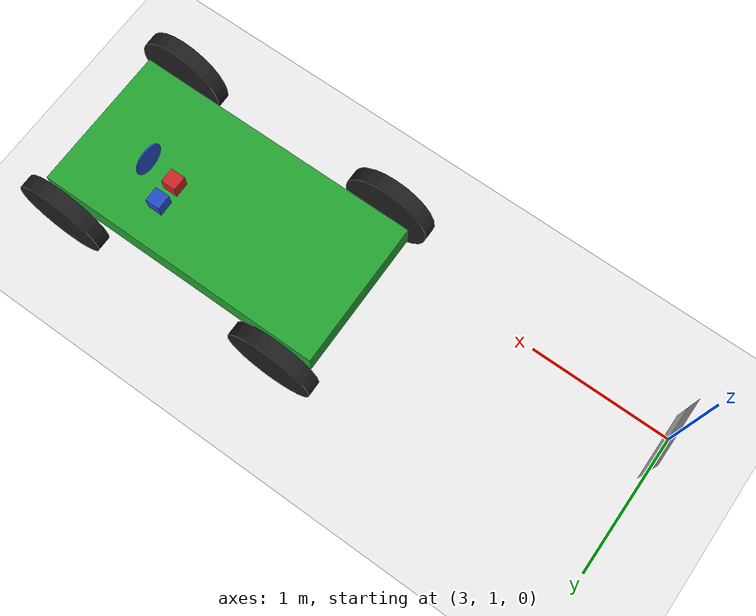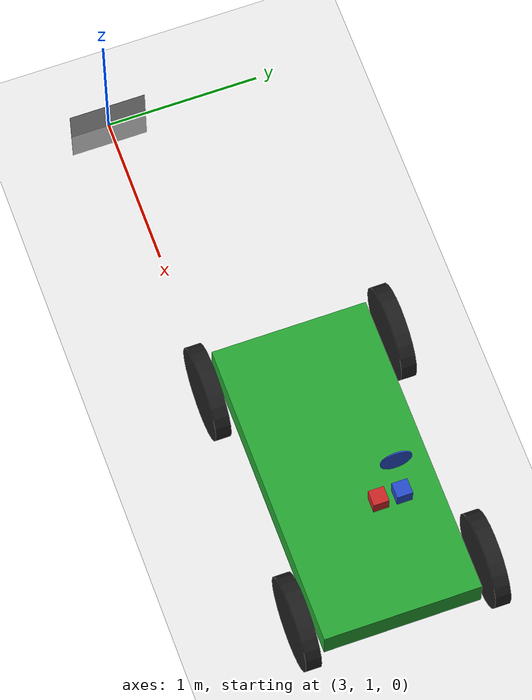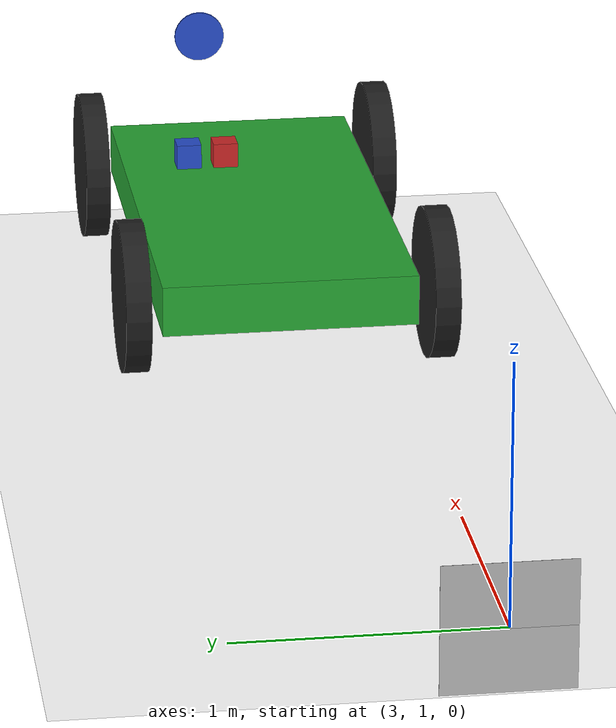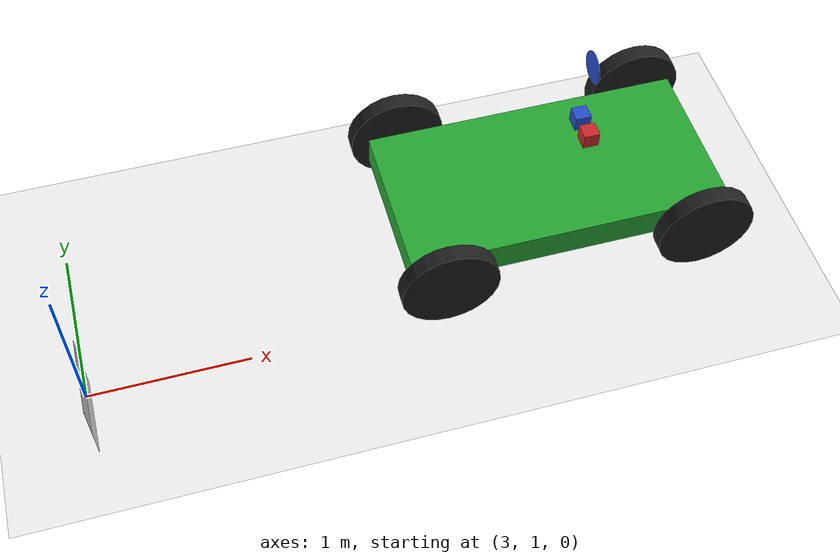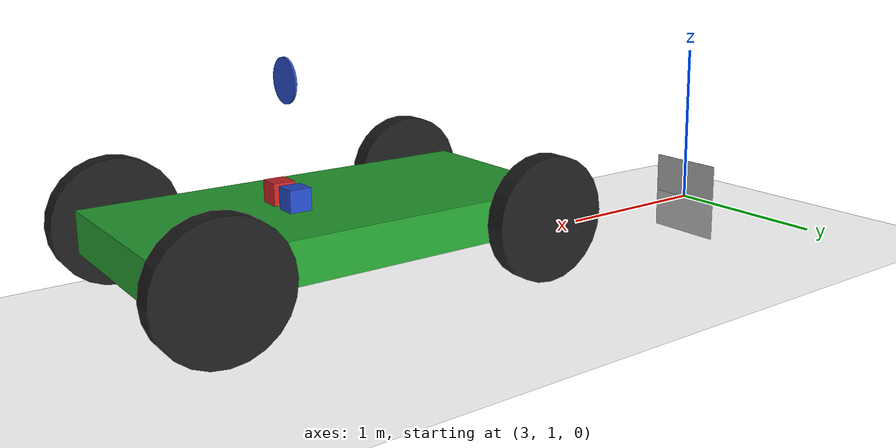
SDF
<sdf version="1.6">
 <world name="default">
  <physics name="default_physics" default="0" type="ode">
   <ode>
    <solver>
     <type>quick</type>
     <iters>10</iters>
     <sor>1.3</sor>
     <use_dynamic_moi_rescaling>0</use_dynamic_moi_rescaling>
    </solver>
    <constraints>
     <cfm>0</cfm>
     <erp>0.2</erp>
     <contact_max_correcting_vel>100</contact_max_correcting_vel>
     <contact_surface_layer>0.001</contact_surface_layer>
    </constraints>
   </ode>
   <max_step_size>0.002</max_step_size>
   <real_time_factor>1</real_time_factor>
   <real_time_update_rate>500</real_time_update_rate>
  </physics>
  <include><uri>model://sun</uri></include>
  <model name="ground_plane">
   <static>true</static>
   <link name="link">
    <collision name="collision">
     <geometry><plane><normal>0 0 1</normal><size>5000 5000</size></plane></geometry>
     <surface><friction><ode><mu>1</mu><mu2>1</mu2></ode></friction></surface>
    </collision>
    <visual name="runway">
     <pose>700 0 0.005 0 0 0</pose>
     <cast_shadows>false</cast_shadows>
     <geometry><plane><normal>0 0 1</normal><size>1829 45</size></plane></geometry>
     <material>
      <script>
       <uri>file:///media/student/code2/px4-1.5/Firmware/Tools/sitl_gazebo/worlds/wang.material</uri>
       <name>Gazebo/Runway</name>
      </script>
     </material>
    </visual>
    <visual name="grass">
     <pose>0 0 -0.1 0 0 0</pose>
     <cast_shadows>false</cast_shadows>
     <geometry><plane><normal>0 0 1</normal><size>5000 5000</size></plane></geometry>
     <material>
      <script>
       <uri>file:///media/student/code2/px4-1.5/Firmware/Tools/sitl_gazebo/worlds/wang.material</uri>
       <name>Gazebo/VSUfarm</name>
      </script>
     </material>
    </visual>
   </link>
  </model>
  <include><uri>model://utility_cart</uri><pose>6 1.5 0.19 0 0 0</pose></include>
  <model name="apriltag1"><pose>3 1 0 0 0 0</pose><include><uri>model://apriltag1</uri></include></model>
 </world>
</sdf>

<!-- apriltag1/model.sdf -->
<sdf version='1.6'>
  <model name='apriltag1'>
    <link name='link'>
      <pose frame=''>0 0 0 0 0 0</pose>
      <self_collide>0</self_collide>
      <kinematic>0</kinematic>
      <gravity>0</gravity>
      <visual name='visual'>
        <geometry>
          <box>
            <size>0.001 0.5 0.5</size>
          </box>
        </geometry>
        <material>
          <script>
              <uri>model://apriltag1/materials/scripts/textures.material</uri>
              <uri>model://apriltag1/materials/textures/apriltag1.png</uri>
            <name>TexturedShape/Apriltag1</name>
          </script>
          <ambient>0.3 0.3 0.3 1</ambient>
          <diffuse>0.7 0.7 0.7 1</diffuse>
          <specular>0.01 0.01 0.01 1</specular>
          <emissive>0 0 0 1</emissive>
          <shader type='vertex'>
            <normal_map>__default__</normal_map>
          </shader>
        </material>
        <pose frame=''>0 0 0 0 -0 0</pose>
        <cast_shadows>1</cast_shadows>
        <transparency>0</transparency>
      </visual>
    </link>
    <static>1</static>
    <allow_auto_disable>1</allow_auto_disable>
  </model>
</sdf>

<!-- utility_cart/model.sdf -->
<sdf version="1.5">
  <model name="utility_cart">
    <link name="chassis">
      <pose>0 0 0.3 0 0 0</pose>
      <collision name="collision">
        <geometry>
          <box>
            <size>2.0 1.0 0.2</size>
          </box>
        </geometry>
      </collision>
      <visual name="visual">
        <geometry>
          <box>
            <size>2.0 1.0 0.2</size>
          </box>
        </geometry>
        <material>
          <script>
            <uri>file://media/materials/scripts/gazebo.material</uri>
            <name>Gazebo/Green</name>
          </script>
        </material>
      </visual>
    </link>
    <link name="front_left_wheel">
      <pose>0.8 0.6 0.3 0 1.5707 1.5707</pose>
      <collision name="collision">
        <geometry>
          <cylinder>
            <radius>0.3</radius>
            <length>0.1</length>
          </cylinder>
        </geometry>
      </collision>
      <visual name="visual">
        <geometry>
          <cylinder>
            <radius>0.3</radius>
            <length>0.1</length>
          </cylinder>
        </geometry>
        <material>
          <script>
            <uri>file://media/materials/scripts/gazebo.material</uri>
            <name>Gazebo/Black</name>
          </script>
        </material>
      </visual>
    </link>
    <link name="front_right_wheel">
      <pose>0.8 -0.6 0.3 0 1.5707 1.5707</pose>
      <collision name="collision">
        <geometry>
          <cylinder>
            <radius>0.3</radius>
            <length>0.1</length>
          </cylinder>
        </geometry>
      </collision>
      <visual name="visual">
        <geometry>
          <cylinder>
            <radius>0.3</radius>
            <length>0.1</length>
          </cylinder>
        </geometry>
        <material>
          <script>
            <uri>file://media/materials/scripts/gazebo.material</uri>
            <name>Gazebo/Black</name>
          </script>
        </material>
      </visual>
    </link>
    <link name="back_right_wheel">
      <pose>-0.8 -0.6 0.3 0 1.5707 1.5707</pose>
      <collision name="collision">
        <geometry>
          <cylinder>
            <radius>0.3</radius>
            <length>0.1</length>
          </cylinder>
        </geometry>
      </collision>
      <visual name="visual">
        <geometry>
          <cylinder>
            <radius>0.3</radius>
            <length>0.1</length>
          </cylinder>
        </geometry>
        <material>
          <script>
            <uri>file://media/materials/scripts/gazebo.material</uri>
            <name>Gazebo/Black</name>
          </script>
        </material>
      </visual>
    </link>
    <link name="back_left_wheel">
      <pose>-0.8 0.6 0.3 0 1.5707 1.5707</pose>
      <collision name="collision">
        <geometry>
          <cylinder>
            <radius>0.3</radius>
            <length>0.1</length>
          </cylinder>
        </geometry>
      </collision>
      <visual name="visual">
        <geometry>
          <cylinder>
            <radius>0.3</radius>
            <length>0.1</length>
          </cylinder>
        </geometry>
        <material>
          <script>
            <uri>file://media/materials/scripts/gazebo.material</uri>
            <name>Gazebo/Black</name>
          </script>
        </material>
      </visual>
    </link>
    <link name="gas_pedal">
      <pose>0.3 0.1 0.5 0 0 0</pose>
      <collision name="collision">
        <geometry>
          <box>
            <size>0.1 0.1 0.1</size>
          </box>
        </geometry>
      </collision>
      <visual name="visual">
        <geometry>
          <box>
            <size>0.1 0.1 0.1</size>
          </box>
        </geometry>
        <material>
          <script>
            <uri>file://media/materials/scripts/gazebo.material</uri>
            <name>Gazebo/Red</name>
          </script>
        </material>
      </visual>
    </link>
    <link name="brake_pedal">
      <pose>0.3 0.25 0.5 0 0 0</pose>
      <collision name="collision">
        <geometry>
          <box>
            <size>0.1 0.1 0.1</size>
          </box>
        </geometry>
      </collision>
      <visual name="visual">
        <geometry>
          <box>
            <size>0.1 0.1 0.1</size>
          </box>
        </geometry>
        <material>
          <script>
            <uri>file://media/materials/scripts/gazebo.material</uri>
            <name>Gazebo/Blue</name>
          </script>
        </material>
      </visual>
    </link>
    <link name="steering_wheel">
      <pose>0.3 0.2 1.0 0 1.5707 0</pose>
      <collision name="collision">
        <geometry>
          <cylinder>
            <radius>0.1</radius>
            <length>0.01</length>
          </cylinder>
        </geometry>
      </collision>
      <visual name="visual">
        <geometry>
          <cylinder>
            <radius>0.1</radius>
            <length>0.01</length>
          </cylinder>
        </geometry>
        <material>
          <script>
            <uri>file://media/materials/scripts/gazebo.material</uri>
            <name>Gazebo/Blue</name>
          </script>
        </material>
      </visual>
    </link>
    <joint type="prismatic" name="gas_joint">
      <parent>chassis</parent>
      <child>gas_pedal</child>
      <axis>
        <xyz>1 0 0</xyz>
        <limit>
          <lower>0</lower>
          <upper>0.2</upper>
        </limit>
        <use_parent_model_frame>true</use_parent_model_frame>
      </axis>
    </joint>
    <joint type="prismatic" name="brake_joint">
      <parent>chassis</parent>
      <child>brake_pedal</child>
      <axis>
        <xyz>1 0 0</xyz>
        <limit>
          <lower>0</lower>
          <upper>0.2</upper>
        </limit>
        <use_parent_model_frame>true</use_parent_model_frame>
      </axis>
    </joint>
    <joint type="revolute" name="steering_joint">
      <parent>chassis</parent>
      <child>steering_wheel</child>
      <axis>
        <xyz>1 0 0</xyz>
        <limit>
          <lower>-7.853</lower>
          <upper>7.853</upper>
        </limit>
        <use_parent_model_frame>true</use_parent_model_frame>
      </axis>
    </joint>
    <joint type="revolute2" name="front_left_joint">
      <parent>chassis</parent>
      <child>front_left_wheel</child>
      <axis>
        <xyz>0 0 1</xyz>
        <limit>
          <lower>0</lower>
          <upper>0</upper>
        </limit>
        <use_parent_model_frame>true</use_parent_model_frame>
      </axis>
      <axis2>
        <xyz>0 1 0</xyz>
        <use_parent_model_frame>true</use_parent_model_frame>
      </axis2>
      <physics>
        <ode>
          <limit>
            <cfm>0.0</cfm>
            <erp>0.9</erp>
          </limit>
        </ode>
      </physics>
    </joint>
    <joint type="revolute2" name="front_right_joint">
      <parent>chassis</parent>
      <child>front_right_wheel</child>
      <axis>
        <xyz>0 0 1</xyz>
        <limit>
          <lower>0</lower>
          <upper>0</upper>
        </limit>
        <use_parent_model_frame>true</use_parent_model_frame>
      </axis>
      <axis2>
        <xyz>0 1 0</xyz>
        <use_parent_model_frame>true</use_parent_model_frame>
      </axis2>
      <physics>
        <ode>
          <limit>
            <cfm>0.0</cfm>
            <erp>0.9</erp>
          </limit>
        </ode>
      </physics>
    </joint>
    <joint type="revolute2" name="back_right_joint">
      <parent>chassis</parent>
      <child>back_right_wheel</child>
      <axis>
        <xyz>0 0 1</xyz>
        <limit>
          <lower>0</lower>
          <upper>0</upper>
        </limit>
        <use_parent_model_frame>true</use_parent_model_frame>
      </axis>
      <axis2>
        <xyz>0 1 0</xyz>
        <use_parent_model_frame>true</use_parent_model_frame>
      </axis2>
      <physics>
        <ode>
          <limit>
            <cfm>0.0</cfm>
            <erp>0.9</erp>
          </limit>
        </ode>
      </physics>
    </joint>
    <joint type="revolute2" name="back_left_joint">
      <parent>chassis</parent>
      <child>back_left_wheel</child>
      <axis>
        <xyz>0 0 1</xyz>
        <limit>
          <lower>0</lower>
          <upper>0</upper>
        </limit>
        <use_parent_model_frame>true</use_parent_model_frame>
      </axis>
      <axis2>
        <xyz>0 1 0</xyz>
        <use_parent_model_frame>true</use_parent_model_frame>
      </axis2>
      <physics>
        <ode>
          <limit>
            <cfm>0.0</cfm>
            <erp>0.9</erp>
          </limit>
        </ode>
      </physics>
    </joint>
    <plugin filename="libVehiclePlugin.so" name="vehicle">
      <!-- Joints for each wheel -->
      <front_left>front_left_joint</front_left>
      <front_right>front_right_joint</front_right>
      <back_left>back_left_joint</back_left>
      <back_right>back_right_joint</back_right>
      <!-- Joint which controls the gas -->
      <gas>gas_joint</gas>
      <!-- Joint which controls the gas -->
      <brake>brake_joint</brake>
      <!-- Joint which controls the steering -->
      <steering>steering_joint</steering>
      <!-- Power is multiplied by "gas" to determine force applied to wheels -->
      <front_power>10</front_power>
      <rear_power>10</rear_power>
      <!-- The angle range the front tires can turn for steering, in radians -->
      <tire_angle_range>0.5</tire_angle_range>
      <!-- Maximum speed for the car in meters/second -->
      <max_speed>10</max_speed>
      <!-- Factor for the down-force applied as the car travels faster -->
      <!-- A larger number increases the down force -->
      <aero_load>0.1</aero_load>
    </plugin>
  </model>
</sdf>
